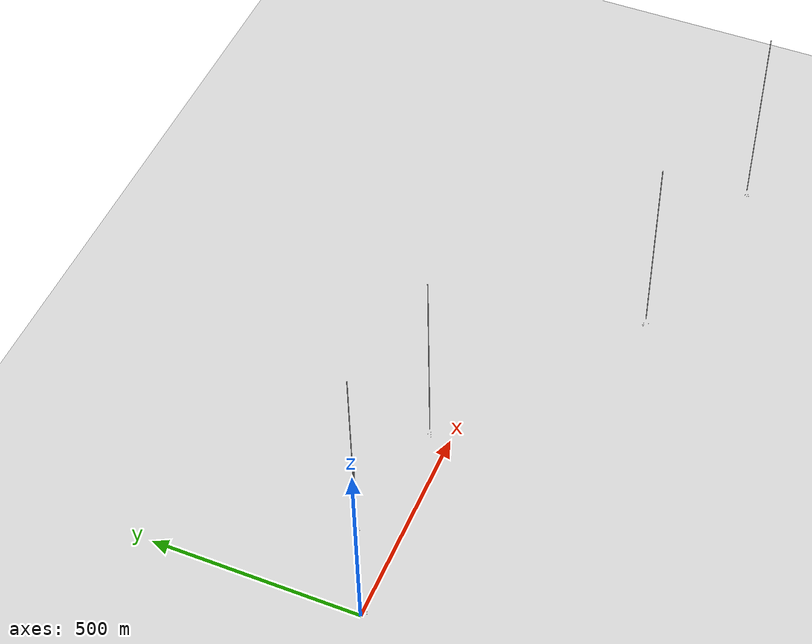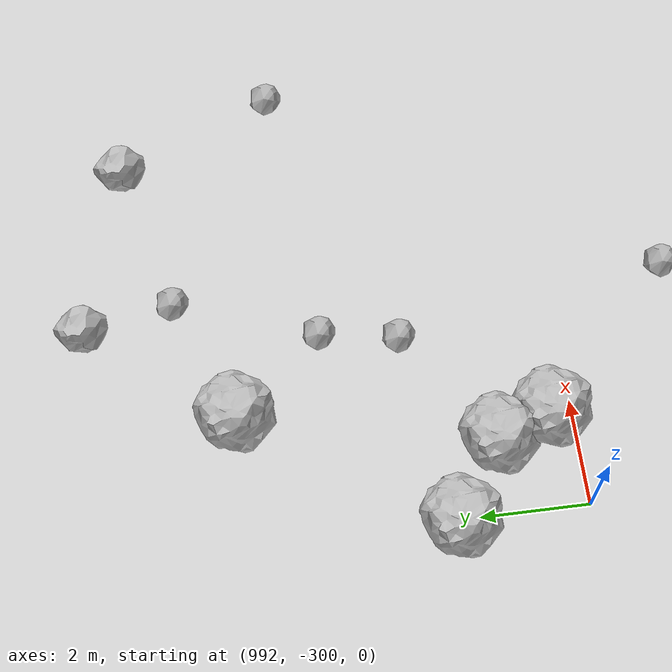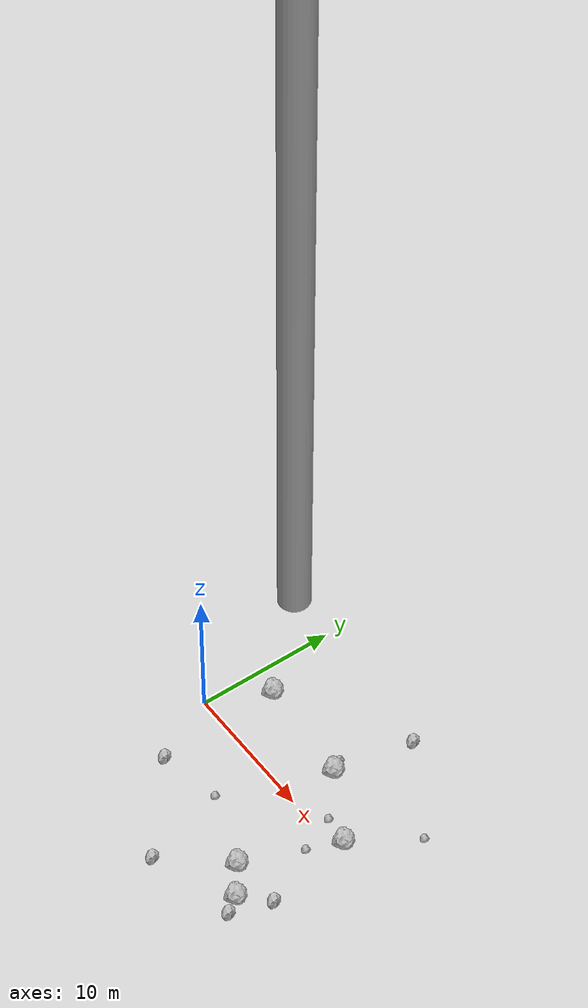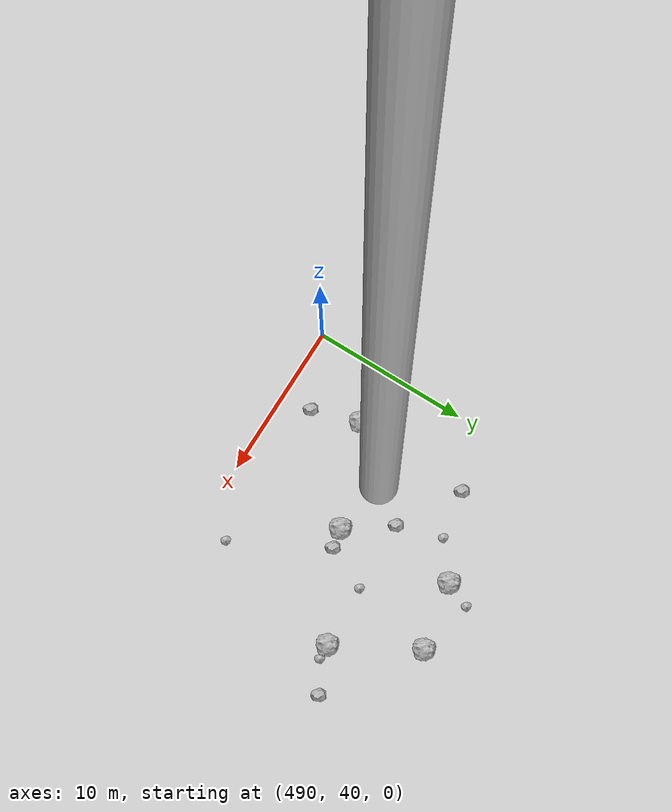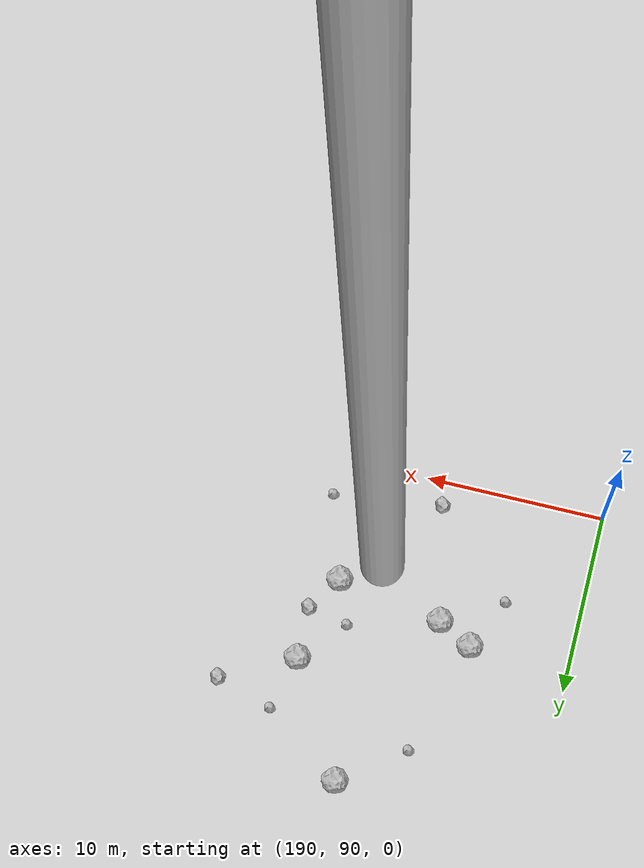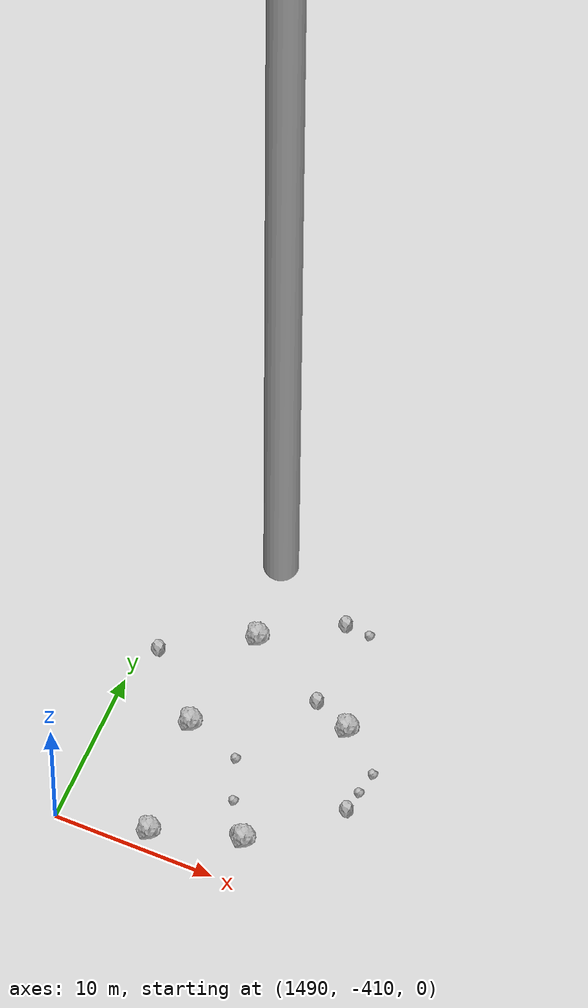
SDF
<?xml version="1.0" ?>
<sdf version="1.6">
  <world name="default">

    <include>
      <uri>model://custom_ground</uri>
    </include>

    <include>
      <uri>model://sun</uri>
    </include>

    <spherical_coordinates>
      <surface_model>EARTH_WGS84</surface_model>
      <latitude_deg>38.161479</latitude_deg>
      <longitude_deg>-122.454630</longitude_deg>
      <elevation>488.0</elevation>
      <heading_deg>90</heading_deg>
    </spherical_coordinates>

    <model name="rock1_0_0">
      <include>
        <uri>model://rock1</uri>
        <pose>2.0756250596319292 4.089003119340207 0.5 0 0 0</pose>
      </include>
    </model>
    <model name="rock1_0_1">
      <include>
        <uri>model://rock1</uri>
        <pose>9.671182768244055 3.4778989682311625 0.5 0 0 0</pose>
      </include>
    </model>
    <model name="rock1_0_2">
      <include>
        <uri>model://rock1</uri>
        <pose>13.920530135304524 -7.255010015059506 0.5 0 0 0</pose>
      </include>
    </model>
    <model name="rock1_0_3">
      <include>
        <uri>model://rock1</uri>
        <pose>11.959441188351839 -5.7662047834117285 0.5 0 0 0</pose>
      </include>
    </model>
    <model name="rock1_0_4">
      <include>
        <uri>model://rock1</uri>
        <pose>14.52325725514163 0.6554290880994724 0.5 0 0 0</pose>
      </include>
    </model>
    <model name="rock2_0_0">
      <include>
        <uri>model://rock2</uri>
        <pose>10.78547953684084 9.110321325324243 0.3 0 0 0</pose>
      </include>
    </model>
    <model name="rock2_0_1">
      <include>
        <uri>model://rock2</uri>
        <pose>2.3179274375337933 -4.7608579079763285 0.3 0 0 0</pose>
      </include>
    </model>
    <model name="rock2_0_2">
      <include>
        <uri>model://rock2</uri>
        <pose>15.554414814455056 -5.52016968006887 0.3 0 0 0</pose>
      </include>
    </model>
    <model name="rock2_0_3">
      <include>
        <uri>model://rock2</uri>
        <pose>14.628220184432795 -8.304445808108929 0.3 0 0 0</pose>
      </include>
    </model>
    <model name="rock2_0_4">
      <include>
        <uri>model://rock2</uri>
        <pose>8.401954275852052 -9.812310209007173 0.3 0 0 0</pose>
      </include>
    </model>
    <model name="rock3_0_0">
      <include>
        <uri>model://rock3</uri>
        <pose>6.717318896701796 -3.8570621881815548 0.2 0 0 0</pose>
      </include>
    </model>
    <model name="rock3_0_1">
      <include>
        <uri>model://rock3</uri>
        <pose>13.505136193127766 -1.6124356999161087 0.2 0 0 0</pose>
      </include>
    </model>
    <model name="rock3_0_2">
      <include>
        <uri>model://rock3</uri>
        <pose>17.22244734234235 4.9740149984396425 0.2 0 0 0</pose>
      </include>
    </model>
    <model name="rock3_0_3">
      <include>
        <uri>model://rock3</uri>
        <pose>12.445611800582977 0.9642879462412175 0.2 0 0 0</pose>
      </include>
    </model>
    <model name="rock3_0_4">
      <include>
        <uri>model://rock3</uri>
        <pose>9.1098035384185 4.340322371921207 0.2 0 0 0</pose>
      </include>
    </model>
    <model name="rock1_1_0">
      <include>
        <uri>model://rock1</uri>
        <pose>200.90684995969988 107.70837713145815 0.5 0 0 0</pose>
      </include>
    </model>
    <model name="rock1_1_1">
      <include>
        <uri>model://rock1</uri>
        <pose>203.3644175052369 96.86443002330228 0.5 0 0 0</pose>
      </include>
    </model>
    <model name="rock1_1_2">
      <include>
        <uri>model://rock1</uri>
        <pose>204.54194832290148 101.65749381058976 0.5 0 0 0</pose>
      </include>
    </model>
    <model name="rock1_1_3">
      <include>
        <uri>model://rock1</uri>
        <pose>197.4474841371553 97.82716316773352 0.5 0 0 0</pose>
      </include>
    </model>
    <model name="rock1_1_4">
      <include>
        <uri>model://rock1</uri>
        <pose>195.54141941157388 98.80498242585779 0.5 0 0 0</pose>
      </include>
    </model>
    <model name="rock2_1_0">
      <include>
        <uri>model://rock2</uri>
        <pose>204.63302854373885 98.77118261712344 0.3 0 0 0</pose>
      </include>
    </model>
    <model name="rock2_1_1">
      <include>
        <uri>model://rock2</uri>
        <pose>198.8299978906241 91.38365947121189 0.3 0 0 0</pose>
      </include>
    </model>
    <model name="rock2_1_2">
      <include>
        <uri>model://rock2</uri>
        <pose>200.55410106357144 95.13644842714312 0.3 0 0 0</pose>
      </include>
    </model>
    <model name="rock2_1_3">
      <include>
        <uri>model://rock2</uri>
        <pose>208.49329654634647 103.71670268159366 0.3 0 0 0</pose>
      </include>
    </model>
    <model name="rock2_1_4">
      <include>
        <uri>model://rock2</uri>
        <pose>201.06631710600925 95.82195043216286 0.3 0 0 0</pose>
      </include>
    </model>
    <model name="rock3_1_0">
      <include>
        <uri>model://rock3</uri>
        <pose>194.157775380069 95.89437597438749 0.2 0 0 0</pose>
      </include>
    </model>
    <model name="rock3_1_1">
      <include>
        <uri>model://rock3</uri>
        <pose>202.34918688165595 99.19369623746594 0.2 0 0 0</pose>
      </include>
    </model>
    <model name="rock3_1_2">
      <include>
        <uri>model://rock3</uri>
        <pose>204.8783210769624 92.148875300455 0.2 0 0 0</pose>
      </include>
    </model>
    <model name="rock3_1_3">
      <include>
        <uri>model://rock3</uri>
        <pose>197.41977781821947 105.1332612895099 0.2 0 0 0</pose>
      </include>
    </model>
    <model name="rock3_1_4">
      <include>
        <uri>model://rock3</uri>
        <pose>205.29443804654082 104.65434395879866 0.2 0 0 0</pose>
      </include>
    </model>
    <model name="rock1_2_0">
      <include>
        <uri>model://rock1</uri>
        <pose>499.33626264685057 54.90360734184705 0.5 0 0 0</pose>
      </include>
    </model>
    <model name="rock1_2_1">
      <include>
        <uri>model://rock1</uri>
        <pose>493.60756910228514 44.99507413918781 0.5 0 0 0</pose>
      </include>
    </model>
    <model name="rock1_2_2">
      <include>
        <uri>model://rock1</uri>
        <pose>503.60300706573116 55.726259656014726 0.5 0 0 0</pose>
      </include>
    </model>
    <model name="rock1_2_3">
      <include>
        <uri>model://rock1</uri>
        <pose>506.4602096421762 50.630279481057265 0.5 0 0 0</pose>
      </include>
    </model>
    <model name="rock1_2_4">
      <include>
        <uri>model://rock1</uri>
        <pose>499.9574274167764 47.50682277310702 0.5 0 0 0</pose>
      </include>
    </model>
    <model name="rock2_2_0">
      <include>
        <uri>model://rock2</uri>
        <pose>497.9383790530383 50.30854466062637 0.3 0 0 0</pose>
      </include>
    </model>
    <model name="rock2_2_1">
      <include>
        <uri>model://rock2</uri>
        <pose>494.4929387391807 41.973340674229036 0.3 0 0 0</pose>
      </include>
    </model>
    <model name="rock2_2_2">
      <include>
        <uri>model://rock2</uri>
        <pose>493.97122244370104 52.633073407448464 0.3 0 0 0</pose>
      </include>
    </model>
    <model name="rock2_2_3">
      <include>
        <uri>model://rock2</uri>
        <pose>509.2618679447427 51.803807443671914 0.3 0 0 0</pose>
      </include>
    </model>
    <model name="rock2_2_4">
      <include>
        <uri>model://rock2</uri>
        <pose>501.16100650845874 47.757358445102525 0.3 0 0 0</pose>
      </include>
    </model>
    <model name="rock3_2_0">
      <include>
        <uri>model://rock3</uri>
        <pose>502.4207475917029 50.4140046499942 0.2 0 0 0</pose>
      </include>
    </model>
    <model name="rock3_2_1">
      <include>
        <uri>model://rock3</uri>
        <pose>497.0544199566162 53.13081933892781 0.2 0 0 0</pose>
      </include>
    </model>
    <model name="rock3_2_2">
      <include>
        <uri>model://rock3</uri>
        <pose>507.3371407052779 50.649329448633196 0.2 0 0 0</pose>
      </include>
    </model>
    <model name="rock3_2_3">
      <include>
        <uri>model://rock3</uri>
        <pose>499.94359054035357 56.53016163256599 0.2 0 0 0</pose>
      </include>
    </model>
    <model name="rock3_2_4">
      <include>
        <uri>model://rock3</uri>
        <pose>504.22817394444303 41.89873120611387 0.2 0 0 0</pose>
      </include>
    </model>
    <model name="rock1_3_0">
      <include>
        <uri>model://rock1</uri>
        <pose>1003.922185631484 -307.2378247966323 0.5 0 0 0</pose>
      </include>
    </model>
    <model name="rock1_3_1">
      <include>
        <uri>model://rock1</uri>
        <pose>991.9677343502042 -297.61264011354166 0.5 0 0 0</pose>
      </include>
    </model>
    <model name="rock1_3_2">
      <include>
        <uri>model://rock1</uri>
        <pose>993.404699257483 -298.54077384755306 0.5 0 0 0</pose>
      </include>
    </model>
    <model name="rock1_3_3">
      <include>
        <uri>model://rock1</uri>
        <pose>993.7970370979154 -299.5699653341552 0.5 0 0 0</pose>
      </include>
    </model>
    <model name="rock1_3_4">
      <include>
        <uri>model://rock1</uri>
        <pose>994.4052091494902 -293.8860776599001 0.5 0 0 0</pose>
      </include>
    </model>
    <model name="rock2_3_0">
      <include>
        <uri>model://rock2</uri>
        <pose>1005.6678644813596 -294.3157216841658 0.3 0 0 0</pose>
      </include>
    </model>
    <model name="rock2_3_1">
      <include>
        <uri>model://rock2</uri>
        <pose>1004.3030597034557 -304.5478021764277 0.3 0 0 0</pose>
      </include>
    </model>
    <model name="rock2_3_2">
      <include>
        <uri>model://rock2</uri>
        <pose>999.7725361350323 -292.2025070097592 0.3 0 0 0</pose>
      </include>
    </model>
    <model name="rock2_3_3">
      <include>
        <uri>model://rock2</uri>
        <pose>996.4442149237971 -291.23760531604523 0.3 0 0 0</pose>
      </include>
    </model>
    <model name="rock2_3_4">
      <include>
        <uri>model://rock2</uri>
        <pose>1009.4323185099264 -298.78229374939826 0.3 0 0 0</pose>
      </include>
    </model>
    <model name="rock3_3_0">
      <include>
        <uri>model://rock3</uri>
        <pose>995.6088256714353 -297.08590391119617 0.2 0 0 0</pose>
      </include>
    </model>
    <model name="rock3_3_1">
      <include>
        <uri>model://rock3</uri>
        <pose>996.7857383560926 -292.9622843779483 0.2 0 0 0</pose>
      </include>
    </model>
    <model name="rock3_3_2">
      <include>
        <uri>model://rock3</uri>
        <pose>996.535470970189 -302.2498755735604 0.2 0 0 0</pose>
      </include>
    </model>
    <model name="rock3_3_3">
      <include>
        <uri>model://rock3</uri>
        <pose>995.8489318943207 -295.62005813510405 0.2 0 0 0</pose>
      </include>
    </model>
    <model name="rock3_3_4">
      <include>
        <uri>model://rock3</uri>
        <pose>1001.0537047490109 -295.205656399539 0.2 0 0 0</pose>
      </include>
    </model>
    <model name="rock1_4_0">
      <include>
        <uri>model://rock1</uri>
        <pose>1494.7892083698225 -401.17502236378004 0.5 0 0 0</pose>
      </include>
    </model>
    <model name="rock1_4_1">
      <include>
        <uri>model://rock1</uri>
        <pose>1496.1012206482262 -394.2439887185916 0.5 0 0 0</pose>
      </include>
    </model>
    <model name="rock1_4_2">
      <include>
        <uri>model://rock1</uri>
        <pose>1503.4614299285267 -397.8888087301152 0.5 0 0 0</pose>
      </include>
    </model>
    <model name="rock1_4_3">
      <include>
        <uri>model://rock1</uri>
        <pose>1500.8088687046509 -407.10307710536745 0.5 0 0 0</pose>
      </include>
    </model>
    <model name="rock1_4_4">
      <include>
        <uri>model://rock1</uri>
        <pose>1495.492370913997 -408.816220603039 0.5 0 0 0</pose>
      </include>
    </model>
    <model name="rock2_4_0">
      <include>
        <uri>model://rock2</uri>
        <pose>1500.2877888587002 -406.9321861598676 0.3 0 0 0</pose>
      </include>
    </model>
    <model name="rock2_4_1">
      <include>
        <uri>model://rock2</uri>
        <pose>1501.0760066839534 -396.8678532466295 0.3 0 0 0</pose>
      </include>
    </model>
    <model name="rock2_4_2">
      <include>
        <uri>model://rock2</uri>
        <pose>1490.988116948837 -397.3068501054605 0.3 0 0 0</pose>
      </include>
    </model>
    <model name="rock2_4_3">
      <include>
        <uri>model://rock2</uri>
        <pose>1500.589879269625 -391.3509241375599 0.3 0 0 0</pose>
      </include>
    </model>
    <model name="rock2_4_4">
      <include>
        <uri>model://rock2</uri>
        <pose>1505.53696935793 -402.87609078918086 0.3 0 0 0</pose>
      </include>
    </model>
    <model name="rock3_4_0">
      <include>
        <uri>model://rock3</uri>
        <pose>1502.1516470318923 -391.50848688273106 0.2 0 0 0</pose>
      </include>
    </model>
    <model name="rock3_4_1">
      <include>
        <uri>model://rock3</uri>
        <pose>1506.0110326478 -400.1092899467002 0.2 0 0 0</pose>
      </include>
    </model>
    <model name="rock3_4_2">
      <include>
        <uri>model://rock3</uri>
        <pose>1499.1871857637693 -404.98497650051314 0.2 0 0 0</pose>
      </include>
    </model>
    <model name="rock3_4_3">
      <include>
        <uri>model://rock3</uri>
        <pose>1505.750351702664 -401.5670765474013 0.2 0 0 0</pose>
      </include>
    </model>
    <model name="rock3_4_4">
      <include>
        <uri>model://rock3</uri>
        <pose>1498.1751182452529 -402.34807942889967 0.2 0 0 0</pose>
      </include>
    </model>

    <model name="cylinder_1">
      <static>true</static>
      <link name="link">
        <visual name="visual">
          <geometry>
            <cylinder>
              <radius>1</radius>
              <length>500</length>
            </cylinder>
          </geometry>
        </visual>
      </link>
      <pose>10 0 270 0 0 0</pose>
    </model>

    <model name="cylinder_2">
      <static>true</static>
      <link name="link">
        <visual name="visual">
          <geometry>
            <cylinder>
              <radius>1</radius>
              <length>500</length>
            </cylinder>
          </geometry>
        </visual>
      </link>
      <pose>200 100 270 0 0 0</pose>
    </model>

    <model name="cylinder_3">
      <static>true</static>
      <link name="link">
        <visual name="visual">
          <geometry>
            <cylinder>
              <radius>1</radius>
              <length>500</length>
            </cylinder>
          </geometry>
        </visual>
      </link>
      <pose>500 50 270 0 0 0</pose>
    </model>

    <model name="cylinder_4">
      <static>true</static>
      <link name="link">
        <visual name="visual">
          <geometry>
            <cylinder>
              <radius>1</radius>
              <length>500</length>
            </cylinder>
          </geometry>
        </visual>
      </link>
      <pose>1000 -300 270 0 0 0</pose>
    </model>

    <model name="cylinder_5">
      <static>true</static>
      <link name="link">
        <visual name="visual">
          <geometry>
            <cylinder>
              <radius>1</radius>
              <length>500</length>
            </cylinder>
          </geometry>
        </visual>
      </link>
      <pose>1500 -400 270 0 0 0</pose>
    </model>

  </world>
</sdf>

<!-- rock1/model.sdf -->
<sdf version="1.6">
  <model name="rock1">
    <static>true</static> <!-- Set to true if the model should not move -->
    <pose>0 0 0 0 0 0</pose>

    <!--z offset is 0.5 for full scale-->

    <link name="link">
      <collision name="rock1_collision">
        <geometry>
          <mesh>
            <uri>model://meshes/rock1.dae</uri>
          </mesh>
        </geometry>
      </collision>
      <visual name="rock1_visual">
        <geometry>
          <mesh>
            <uri>model://meshes/rock1.dae</uri>
          </mesh>
        </geometry>
        <material>
          <script>
            <uri>model://materials/scripts/sand_pebbles.material</uri>
            <name>custom_ground/Image</name>
          </script>
        </material>
      </visual>
    </link>
  </model>
</sdf>

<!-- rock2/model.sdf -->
<sdf version="1.6">
  <model name="rock2">
    <static>true</static> <!-- Set to true if the model should not move -->
    <pose>0 0 0 0 0 0</pose>

    <!--z offset is 0.3 for full scale-->

    <link name="link">
      <collision name="rock2_collision">
        <geometry>
          <mesh>
            <uri>model://meshes/rock2.dae</uri>
          </mesh>
        </geometry>
      </collision>
      <visual name="rock2_visual">
        <geometry>
          <mesh>
            <uri>model://meshes/rock2.dae</uri>
          </mesh>
        </geometry>
        <material>
          <script>
            <uri>model://materials/scripts/sand_pebbles.material</uri>
            <name>custom_ground/Image</name>
          </script>
        </material>
      </visual>
    </link>
  </model>
</sdf>

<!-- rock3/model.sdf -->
<sdf version="1.6">
  <model name="rock3">
    <static>true</static> <!-- Set to true if the model should not move -->
    <pose>0 0 0 0 0 0</pose>

    <!--z offset is 0.2 for full scale-->

    <link name="link">
      <collision name="rock3_collision">
        <geometry>
          <mesh>
            <uri>model://meshes/rock3.dae</uri>
          </mesh>
        </geometry>
      </collision>
      <visual name="rock3_visual">
        <geometry>
          <mesh>
            <uri>model://meshes/rock3.dae</uri>
          </mesh>
        </geometry>
        <material>
          <script>
            <uri>model://materials/scripts/sand_pebbles.material</uri>
            <name>custom_ground/Image</name>
          </script>
        </material>
      </visual>
    </link>
  </model>
</sdf>

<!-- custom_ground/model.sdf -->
<sdf version="1.6">
  <model name="custom_ground">
    <static>true</static> <!-- Ground is static and immovable -->
    <link name="ground_link">
      <pose>240 0 0 0 0 0</pose> <!-- Position and orientation relative to the world -->
      <!-- Visual Representation -->
      <visual name="ground_visual">
        <geometry>
          <plane>
            <normal>0 0 1</normal> <!-- Upward facing plane -->
            <size>500 500</size> <!-- Size of the plane -->
          </plane>
        </geometry>
        <material>
          <script>
            <uri>model://materials/scripts/sand_pebbles.material</uri>
            <name>custom_ground/Image</name>
          </script>
        </material>
      </visual>

      <!-- Collision Representation -->
      <collision name="ground_collision">
        <geometry>
          <plane>
            <normal>0 0 1</normal>
            <size>100 100</size>
          </plane>
        </geometry>
      </collision>

    </link>
  </model>
</sdf>
